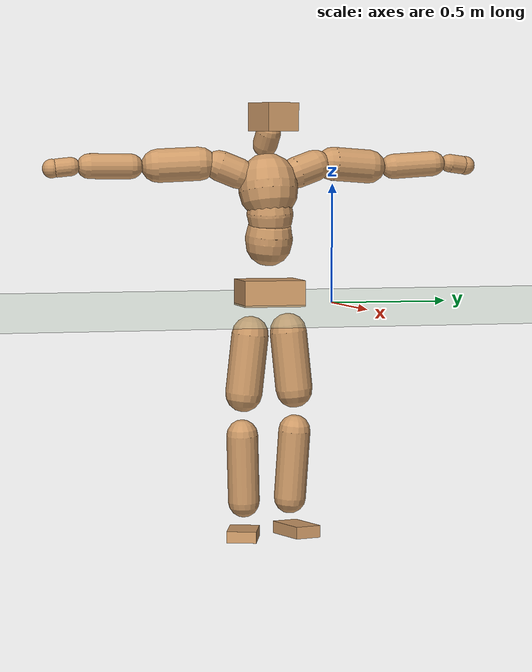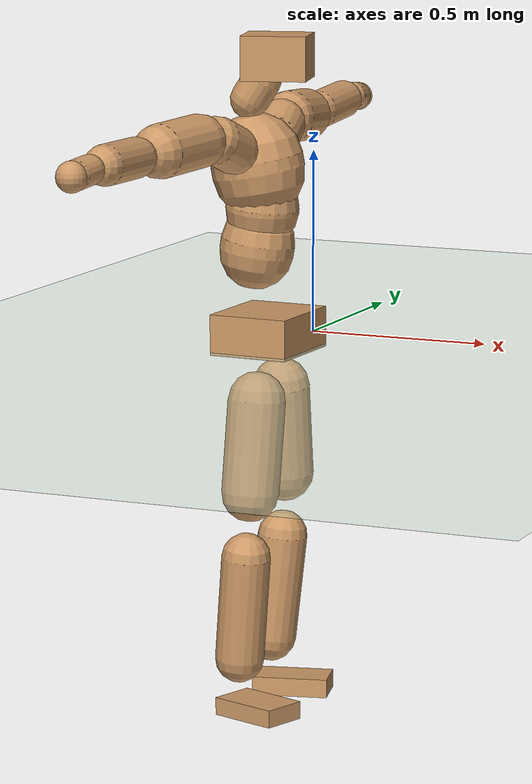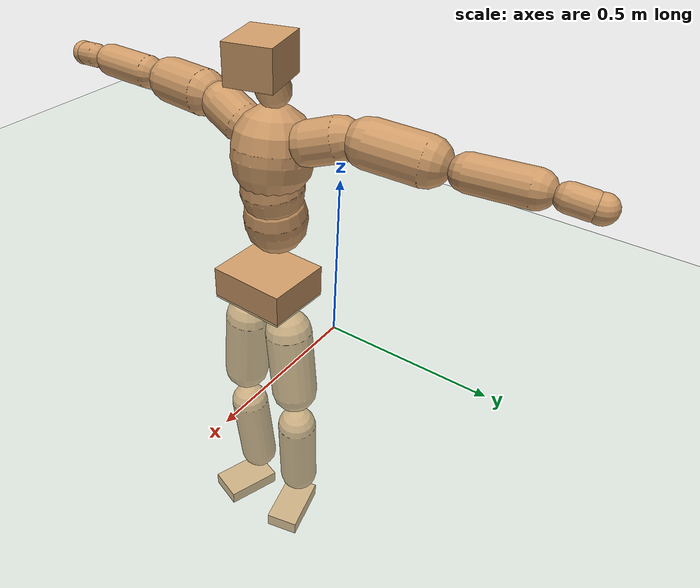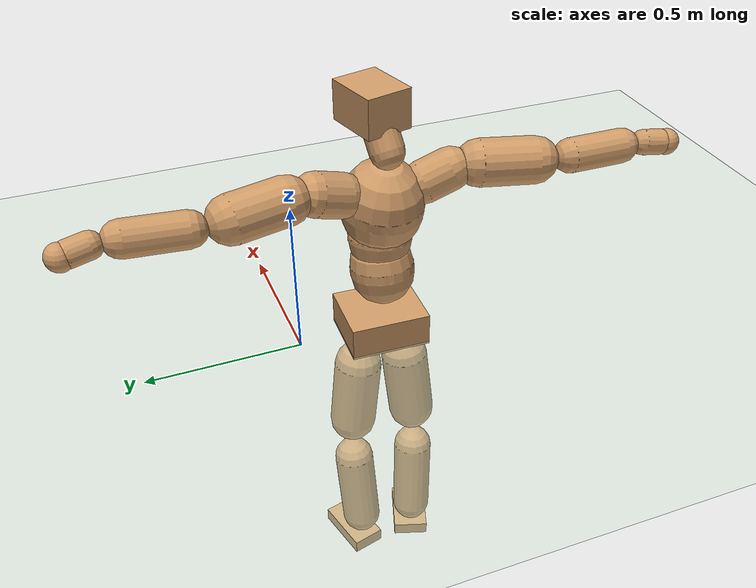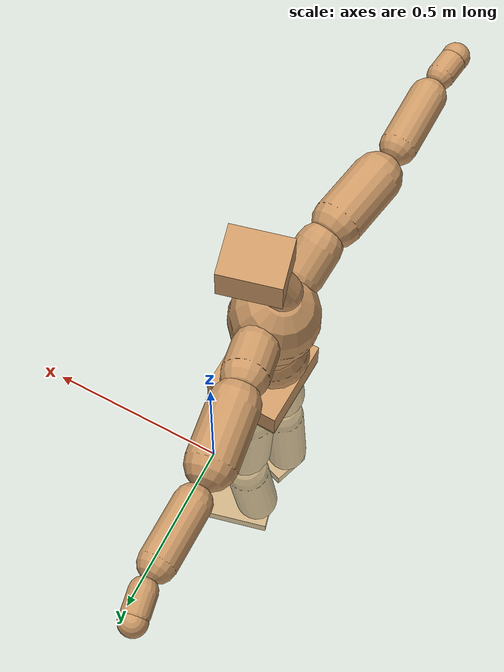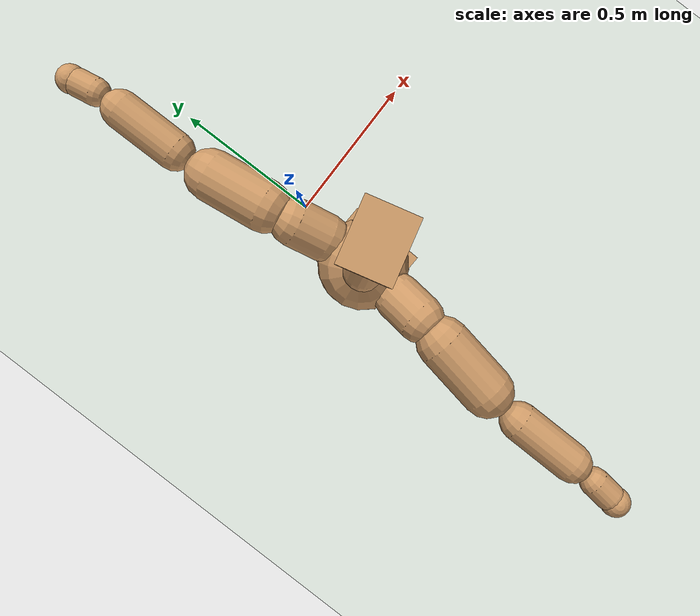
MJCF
<mujoco model="humanoid">
  <compiler coordinate="local" angle="radian"/>
  <default>
    <joint damping="0.0" armature="0.01" stiffness="0.0" limited="true"/>
    <geom conaffinity="1" condim="3" contype="7" margin="0.001" rgba="0.8 0.6 .4 1"/>
  </default>
  <asset>
    <texture type="skybox" builtin="gradient" rgb1=".4 .5 .6" rgb2="0 0 0" width="100" height="100"/>
    <texture builtin="flat" height="1278" mark="cross" markrgb="1 1 1" name="texgeom" random="0.01" rgb1="0.8 0.6 0.4" rgb2="0.8 0.6 0.4" type="cube" width="127"/>
    <texture builtin="checker" height="100" name="texplane" rgb1="0 0 0" rgb2="0.8 0.8 0.8" type="2d" width="100"/>
    <material name="MatPlane" reflectance="0.5" shininess="1" specular="1" texrepeat="60 60" texture="texplane"/>
    <material name="geom" texture="texgeom" texuniform="true"/>
  </asset>
  <worldbody>
    <light cutoff="100" diffuse="1 1 1" dir="-0 0 -1.3" directional="true" exponent="1" pos="0 0 1.3" specular=".1 .1 .1"/>
    <geom conaffinity="1" condim="3" name="floor" pos="0 0 0" rgba="0.8 0.9 0.8 1" size="100 100 .2" type="plane" material="MatPlane"/>
    <body name="Pelvis" pos="-0.003 -0.2694 0.0534">
      <freejoint name="Pelvis"/>
      <geom type="box" contype="1" conaffinity="1" density="500" pos="-0.0132 0.0005 -0.0084" size="0.11 0.128 0.0548" quat="0.9998 0.0000 0.0000 -0.0179" name="Pelvis"/>
      <body name="L_Hip" pos="-0.0123 0.0734 -0.0916">
        <joint name="L_Hip_x" type="hinge" pos="0 0 0" axis="1 0 0" stiffness="800" damping="80" armature="0.02" range="-180.0000 180.0000"/>
        <joint name="L_Hip_y" type="hinge" pos="0 0 0" axis="0 1 0" stiffness="800" damping="80" armature="0.02" range="-180.0000 180.0000"/>
        <joint name="L_Hip_z" type="hinge" pos="0 0 0" axis="0 0 1" stiffness="800" damping="80" armature="0.02" range="-180.0000 180.0000"/>
        <geom type="capsule" contype="1" conaffinity="1" density="500" fromto="0.0002 0.0085 -0.0814 0.0008 0.0339 -0.3255" size="0.0777" name="L_Hip"/>
        <body name="L_Knee" pos="0.0009 0.0423 -0.4068">
          <joint name="L_Knee_x" type="hinge" pos="0 0 0" axis="1 0 0" stiffness="800" damping="80" armature="0.02" range="-180.0000 180.0000"/>
          <joint name="L_Knee_y" type="hinge" pos="0 0 0" axis="0 1 0" stiffness="800" damping="80" armature="0.02" range="-180.0000 180.0000"/>
          <joint name="L_Knee_z" type="hinge" pos="0 0 0" axis="0 0 1" stiffness="800" damping="80" armature="0.02" range="-180.0000 180.0000"/>
          <geom type="capsule" contype="1" conaffinity="1" density="500" fromto="-0.0095 -0.0039 -0.0956 -0.0379 -0.0158 -0.3824" size="0.0676" name="L_Knee"/>
          <body name="L_Ankle" pos="-0.0474 -0.0197 -0.4779">
            <joint name="L_Ankle_x" type="hinge" pos="0 0 0" axis="1 0 0" stiffness="800" damping="80" armature="0.02" range="-180.0000 180.0000"/>
            <joint name="L_Ankle_y" type="hinge" pos="0 0 0" axis="0 1 0" stiffness="800" damping="80" armature="0.02" range="-180.0000 180.0000"/>
            <joint name="L_Ankle_z" type="hinge" pos="0 0 0" axis="0 0 1" stiffness="800" damping="80" armature="0.02" range="-180.0000 180.0000"/>
            <geom type="box" contype="1" conaffinity="1" density="500" pos="0.0678 0.0166 -0.0328" size="0.1028 0.0563 0.0252" quat="0.9928 0.0000 0.0000 0.1200" name="L_Ankle"/>
            <body name="L_Toe" pos="0.1357 0.0333 -0.0657">
              <joint name="L_Toe_x" type="hinge" pos="0 0 0" axis="1 0 0" stiffness="500" damping="50" armature="0.02" range="-180.0000 180.0000"/>
              <joint name="L_Toe_y" type="hinge" pos="0 0 0" axis="0 1 0" stiffness="500" damping="50" armature="0.02" range="-180.0000 180.0000"/>
              <joint name="L_Toe_z" type="hinge" pos="0 0 0" axis="0 0 1" stiffness="500" damping="50" armature="0.02" range="-180.0000 180.0000"/>
              <geom type="box" contype="1" conaffinity="1" density="500" pos="0.0000 0.0000 0.0322" size="0.0011 0.0028 0.0012" quat="0.9921 0.0000 0.0000 0.1252" name="L_Toe"/>
            </body>
          </body>
        </body>
      </body>
      <body name="R_Hip" pos="-0.0068 -0.0759 -0.0996">
        <joint name="R_Hip_x" type="hinge" pos="0 0 0" axis="1 0 0" stiffness="800" damping="80" armature="0.02" range="-180.0000 180.0000"/>
        <joint name="R_Hip_y" type="hinge" pos="0 0 0" axis="0 1 0" stiffness="800" damping="80" armature="0.02" range="-180.0000 180.0000"/>
        <joint name="R_Hip_z" type="hinge" pos="0 0 0" axis="0 0 1" stiffness="800" damping="80" armature="0.02" range="-180.0000 180.0000"/>
        <geom type="capsule" contype="1" conaffinity="1" density="500" fromto="-0.0026 -0.0085 -0.0828 -0.0106 -0.0341 -0.3314" size="0.0773" name="R_Hip"/>
        <body name="R_Knee" pos="-0.0132 -0.0426 -0.4142">
          <joint name="R_Knee_x" type="hinge" pos="0 0 0" axis="1 0 0" stiffness="800" damping="80" armature="0.02" range="-180.0000 180.0000"/>
          <joint name="R_Knee_y" type="hinge" pos="0 0 0" axis="0 1 0" stiffness="800" damping="80" armature="0.02" range="-180.0000 180.0000"/>
          <joint name="R_Knee_z" type="hinge" pos="0 0 0" axis="0 0 1" stiffness="800" damping="80" armature="0.02" range="-180.0000 180.0000"/>
          <geom type="capsule" contype="1" conaffinity="1" density="500" fromto="-0.0086 0.0046 -0.0947 -0.0345 0.0184 -0.3787" size="0.0664" name="R_Knee"/>
          <body name="R_Ankle" pos="-0.0431 0.023 -0.4734">
            <joint name="R_Ankle_x" type="hinge" pos="0 0 0" axis="1 0 0" stiffness="800" damping="80" armature="0.02" range="-180.0000 180.0000"/>
            <joint name="R_Ankle_y" type="hinge" pos="0 0 0" axis="0 1 0" stiffness="800" damping="80" armature="0.02" range="-180.0000 180.0000"/>
            <joint name="R_Ankle_z" type="hinge" pos="0 0 0" axis="0 0 1" stiffness="800" damping="80" armature="0.02" range="-180.0000 180.0000"/>
            <geom type="box" contype="1" conaffinity="1" density="500" pos="0.0710 -0.0240 -0.0338" size="0.0976 0.0621 0.0238" quat="0.9868 0.0000 0.0000 -0.1620" name="R_Ankle"/>
            <body name="R_Toe" pos="0.142 -0.0479 -0.0676">
              <joint name="R_Toe_x" type="hinge" pos="0 0 0" axis="1 0 0" stiffness="500" damping="50" armature="0.02" range="-180.0000 180.0000"/>
              <joint name="R_Toe_y" type="hinge" pos="0 0 0" axis="0 1 0" stiffness="500" damping="50" armature="0.02" range="-180.0000 180.0000"/>
              <joint name="R_Toe_z" type="hinge" pos="0 0 0" axis="0 0 1" stiffness="500" damping="50" armature="0.02" range="-180.0000 180.0000"/>
              <geom type="box" contype="1" conaffinity="1" density="500" pos="0.0000 0.0000 0.0350" size="0.0013 0.0029 0.0012" quat="0.9881 0.0000 0.0000 -0.1537" name="R_Toe"/>
            </body>
          </body>
        </body>
      </body>
      <body name="Torso" pos="-0.0601 0.0053 0.1409">
        <joint name="Torso_x" type="hinge" pos="0 0 0" axis="1 0 0" stiffness="1000" damping="100" armature="0.02" range="-180.0000 180.0000"/>
        <joint name="Torso_y" type="hinge" pos="0 0 0" axis="0 1 0" stiffness="1000" damping="100" armature="0.02" range="-180.0000 180.0000"/>
        <joint name="Torso_z" type="hinge" pos="0 0 0" axis="0 0 1" stiffness="1000" damping="100" armature="0.02" range="-180.0000 180.0000"/>
        <geom type="capsule" contype="1" conaffinity="1" density="500" fromto="0.0142 0.0025 0.0893 0.0095 0.0017 0.0595" size="0.0993" name="Torso"/>
        <body name="Spine" pos="0.0237 0.0042 0.1488">
          <joint name="Spine_x" type="hinge" pos="0 0 0" axis="1 0 0" stiffness="1000" damping="100" armature="0.02" range="-180.0000 180.0000"/>
          <joint name="Spine_y" type="hinge" pos="0 0 0" axis="0 1 0" stiffness="1000" damping="100" armature="0.02" range="-180.0000 180.0000"/>
          <joint name="Spine_z" type="hinge" pos="0 0 0" axis="0 0 1" stiffness="1000" damping="100" armature="0.02" range="-180.0000 180.0000"/>
          <geom type="capsule" contype="1" conaffinity="1" density="500" fromto="0.0040 -0.0018 0.0367 0.0026 -0.0012 0.0245" size="0.0982" name="Spine"/>
          <body name="Chest" pos="0.0066 -0.0029 0.0612">
            <joint name="Chest_x" type="hinge" pos="0 0 0" axis="1 0 0" stiffness="1000" damping="100" armature="0.02" range="-180.0000 180.0000"/>
            <joint name="Chest_y" type="hinge" pos="0 0 0" axis="0 1 0" stiffness="1000" damping="100" armature="0.02" range="-180.0000 180.0000"/>
            <joint name="Chest_z" type="hinge" pos="0 0 0" axis="0 0 1" stiffness="1000" damping="100" armature="0.02" range="-180.0000 180.0000"/>
            <geom type="capsule" contype="1" conaffinity="1" density="500" fromto="-0.0170 -0.0048 0.1001 -0.0113 -0.0032 0.0667" size="0.1247" name="Chest"/>
            <body name="Neck" pos="-0.0447 -0.0145 0.242">
              <joint name="Neck_x" type="hinge" pos="0 0 0" axis="1 0 0" stiffness="500" damping="50" armature="0.02" range="-180.0000 180.0000"/>
              <joint name="Neck_y" type="hinge" pos="0 0 0" axis="0 1 0" stiffness="500" damping="50" armature="0.02" range="-180.0000 180.0000"/>
              <joint name="Neck_z" type="hinge" pos="0 0 0" axis="0 0 1" stiffness="500" damping="50" armature="0.02" range="-180.0000 180.0000"/>
              <geom type="capsule" contype="1" conaffinity="1" density="500" fromto="0.0110 0.0025 0.0175 0.0439 0.0098 0.0701" size="0.052" name="Neck"/>
              <body name="Head" pos="0.0549 0.0123 0.0876">
                <joint name="Head_x" type="hinge" pos="0 0 0" axis="1 0 0" stiffness="500" damping="50" armature="0.02" range="-180.0000 180.0000"/>
                <joint name="Head_y" type="hinge" pos="0 0 0" axis="0 1 0" stiffness="500" damping="50" armature="0.02" range="-180.0000 180.0000"/>
                <joint name="Head_z" type="hinge" pos="0 0 0" axis="0 0 1" stiffness="500" damping="50" armature="0.02" range="-180.0000 180.0000"/>
                <geom type="box" contype="1" conaffinity="1" density="500" pos="0.0285 0.0071 0.0448" size="0.0877 0.0718 0.0593" quat="0.9924 0.0000 0.0000 0.1227" name="Head"/>
              </body>
            </body>
            <body name="L_Thorax" pos="-0.0157 0.0892 0.131">
              <joint name="L_Thorax_x" type="hinge" pos="0 0 0" axis="1 0 0" stiffness="500" damping="50" armature="0.02" range="-180.0000 180.0000"/>
              <joint name="L_Thorax_y" type="hinge" pos="0 0 0" axis="0 1 0" stiffness="500" damping="50" armature="0.02" range="-180.0000 180.0000"/>
              <joint name="L_Thorax_z" type="hinge" pos="0 0 0" axis="0 0 1" stiffness="500" damping="50" armature="0.02" range="-180.0000 180.0000"/>
              <geom type="capsule" contype="1" conaffinity="1" density="500" fromto="-0.0061 0.0297 0.0103 -0.0244 0.1187 0.0412" size="0.0663" name="L_Thorax"/>
              <body name="L_Shoulder" pos="-0.0306 0.1484 0.0515">
                <joint name="L_Shoulder_x" type="hinge" pos="0 0 0" axis="1 0 0" stiffness="500" damping="50" armature="0.02" range="-720.0000 720.0000"/>
                <joint name="L_Shoulder_y" type="hinge" pos="0 0 0" axis="0 1 0" stiffness="500" damping="50" armature="0.02" range="-720.0000 720.0000"/>
                <joint name="L_Shoulder_z" type="hinge" pos="0 0 0" axis="0 0 1" stiffness="500" damping="50" armature="0.02" range="-720.0000 720.0000"/>
                <geom type="capsule" contype="1" conaffinity="1" density="500" fromto="-0.0073 0.0544 -0.0039 -0.0294 0.2177 -0.0157" size="0.0718" name="L_Shoulder"/>
                <body name="L_Elbow" pos="-0.0367 0.2721 -0.0196">
                  <joint name="L_Elbow_x" type="hinge" pos="0 0 0" axis="1 0 0" stiffness="500" damping="50" armature="0.02" range="-720.0000 720.0000"/>
                  <joint name="L_Elbow_y" type="hinge" pos="0 0 0" axis="0 1 0" stiffness="500" damping="50" armature="0.02" range="-720.0000 720.0000"/>
                  <joint name="L_Elbow_z" type="hinge" pos="0 0 0" axis="0 0 1" stiffness="500" damping="50" armature="0.02" range="-720.0000 720.0000"/>
                  <geom type="capsule" contype="1" conaffinity="1" density="500" fromto="-0.0001 0.0590 0.0040 -0.0004 0.2358 0.0158" size="0.0531" name="L_Elbow"/>
                  <body name="L_Wrist" pos="-0.0005 0.2948 0.0198">
                    <joint name="L_Wrist_x" type="hinge" pos="0 0 0" axis="1 0 0" stiffness="300" damping="30" armature="0.02" range="-180.0000 180.0000"/>
                    <joint name="L_Wrist_y" type="hinge" pos="0 0 0" axis="0 1 0" stiffness="300" damping="30" armature="0.02" range="-180.0000 180.0000"/>
                    <joint name="L_Wrist_z" type="hinge" pos="0 0 0" axis="0 0 1" stiffness="300" damping="30" armature="0.02" range="-180.0000 180.0000"/>
                    <geom type="capsule" contype="1" conaffinity="1" density="500" fromto="-0.0034 0.0193 -0.0025 -0.0137 0.0774 -0.0100" size="0.0388" name="L_Wrist"/>
                    <body name="L_Hand" pos="-0.0171 0.0967 -0.0125">
                      <joint name="L_Hand_x" type="hinge" pos="0 0 0" axis="1 0 0" stiffness="300" damping="30" armature="0.02" range="-180.0000 180.0000"/>
                      <joint name="L_Hand_y" type="hinge" pos="0 0 0" axis="0 1 0" stiffness="300" damping="30" armature="0.02" range="-180.0000 180.0000"/>
                      <joint name="L_Hand_z" type="hinge" pos="0 0 0" axis="0 0 1" stiffness="300" damping="30" armature="0.02" range="-180.0000 180.0000"/>
                      <geom type="sphere" contype="1" conaffinity="1" density="500" size="0.0399" pos="0.0000 0.0000 0.0000" name="L_Hand"/>
                    </body>
                  </body>
                </body>
              </body>
            </body>
            <body name="R_Thorax" pos="-0.0248 -0.0989 0.1275">
              <joint name="R_Thorax_x" type="hinge" pos="0 0 0" axis="1 0 0" stiffness="500" damping="50" armature="0.02" range="-180.0000 180.0000"/>
              <joint name="R_Thorax_y" type="hinge" pos="0 0 0" axis="0 1 0" stiffness="500" damping="50" armature="0.02" range="-180.0000 180.0000"/>
              <joint name="R_Thorax_z" type="hinge" pos="0 0 0" axis="0 0 1" stiffness="500" damping="50" armature="0.02" range="-180.0000 180.0000"/>
              <geom type="capsule" contype="1" conaffinity="1" density="500" fromto="-0.0034 -0.0271 0.0110 -0.0136 -0.1086 0.0442" size="0.0651" name="R_Thorax"/>
              <body name="R_Shoulder" pos="-0.017 -0.1357 0.0552">
                <joint name="R_Shoulder_x" type="hinge" pos="0 0 0" axis="1 0 0" stiffness="500" damping="50" armature="0.02" range="-720.0000 720.0000"/>
                <joint name="R_Shoulder_y" type="hinge" pos="0 0 0" axis="0 1 0" stiffness="500" damping="50" armature="0.02" range="-720.0000 720.0000"/>
                <joint name="R_Shoulder_z" type="hinge" pos="0 0 0" axis="0 0 1" stiffness="500" damping="50" armature="0.02" range="-720.0000 720.0000"/>
                <geom type="capsule" contype="1" conaffinity="1" density="500" fromto="-0.0100 -0.0566 -0.0027 -0.0399 -0.2263 -0.0109" size="0.0713" name="R_Shoulder"/>
                <body name="R_Elbow" pos="-0.0498 -0.2828 -0.0137">
                  <joint name="R_Elbow_x" type="hinge" pos="0 0 0" axis="1 0 0" stiffness="500" damping="50" armature="0.02" range="-720.0000 720.0000"/>
                  <joint name="R_Elbow_y" type="hinge" pos="0 0 0" axis="0 1 0" stiffness="500" damping="50" armature="0.02" range="-720.0000 720.0000"/>
                  <joint name="R_Elbow_z" type="hinge" pos="0 0 0" axis="0 0 1" stiffness="500" damping="50" armature="0.02" range="-720.0000 720.0000"/>
                  <geom type="capsule" contype="1" conaffinity="1" density="500" fromto="-0.0007 -0.0580 0.0004 -0.0030 -0.2320 0.0016" size="0.0528" name="R_Elbow"/>
                  <body name="R_Wrist" pos="-0.0037 -0.2899 0.0019">
                    <joint name="R_Wrist_x" type="hinge" pos="0 0 0" axis="1 0 0" stiffness="300" damping="30" armature="0.02" range="-180.0000 180.0000"/>
                    <joint name="R_Wrist_y" type="hinge" pos="0 0 0" axis="0 1 0" stiffness="300" damping="30" armature="0.02" range="-180.0000 180.0000"/>
                    <joint name="R_Wrist_z" type="hinge" pos="0 0 0" axis="0 0 1" stiffness="300" damping="30" armature="0.02" range="-180.0000 180.0000"/>
                    <geom type="capsule" contype="1" conaffinity="1" density="500" fromto="-0.0022 -0.0196 -0.0020 -0.0087 -0.0784 -0.0081" size="0.0391" name="R_Wrist"/>
                    <body name="R_Hand" pos="-0.0109 -0.098 -0.0101">
                      <joint name="R_Hand_x" type="hinge" pos="0 0 0" axis="1 0 0" stiffness="300" damping="30" armature="0.02" range="-180.0000 180.0000"/>
                      <joint name="R_Hand_y" type="hinge" pos="0 0 0" axis="0 1 0" stiffness="300" damping="30" armature="0.02" range="-180.0000 180.0000"/>
                      <joint name="R_Hand_z" type="hinge" pos="0 0 0" axis="0 0 1" stiffness="300" damping="30" armature="0.02" range="-180.0000 180.0000"/>
                      <geom type="sphere" contype="1" conaffinity="1" density="500" size="0.0400" pos="0.0000 0.0000 0.0000" name="R_Hand"/>
                    </body>
                  </body>
                </body>
              </body>
            </body>
          </body>
        </body>
      </body>
    </body>
  </worldbody>
  <actuator>
    <motor name="L_Hip_x" joint="L_Hip_x" gear="500"/>
    <motor name="L_Hip_y" joint="L_Hip_y" gear="500"/>
    <motor name="L_Hip_z" joint="L_Hip_z" gear="500"/>
    <motor name="L_Knee_x" joint="L_Knee_x" gear="500"/>
    <motor name="L_Knee_y" joint="L_Knee_y" gear="500"/>
    <motor name="L_Knee_z" joint="L_Knee_z" gear="500"/>
    <motor name="L_Ankle_x" joint="L_Ankle_x" gear="500"/>
    <motor name="L_Ankle_y" joint="L_Ankle_y" gear="500"/>
    <motor name="L_Ankle_z" joint="L_Ankle_z" gear="500"/>
    <motor name="L_Toe_x" joint="L_Toe_x" gear="500"/>
    <motor name="L_Toe_y" joint="L_Toe_y" gear="500"/>
    <motor name="L_Toe_z" joint="L_Toe_z" gear="500"/>
    <motor name="R_Hip_x" joint="R_Hip_x" gear="500"/>
    <motor name="R_Hip_y" joint="R_Hip_y" gear="500"/>
    <motor name="R_Hip_z" joint="R_Hip_z" gear="500"/>
    <motor name="R_Knee_x" joint="R_Knee_x" gear="500"/>
    <motor name="R_Knee_y" joint="R_Knee_y" gear="500"/>
    <motor name="R_Knee_z" joint="R_Knee_z" gear="500"/>
    <motor name="R_Ankle_x" joint="R_Ankle_x" gear="500"/>
    <motor name="R_Ankle_y" joint="R_Ankle_y" gear="500"/>
    <motor name="R_Ankle_z" joint="R_Ankle_z" gear="500"/>
    <motor name="R_Toe_x" joint="R_Toe_x" gear="500"/>
    <motor name="R_Toe_y" joint="R_Toe_y" gear="500"/>
    <motor name="R_Toe_z" joint="R_Toe_z" gear="500"/>
    <motor name="Torso_x" joint="Torso_x" gear="500"/>
    <motor name="Torso_y" joint="Torso_y" gear="500"/>
    <motor name="Torso_z" joint="Torso_z" gear="500"/>
    <motor name="Spine_x" joint="Spine_x" gear="500"/>
    <motor name="Spine_y" joint="Spine_y" gear="500"/>
    <motor name="Spine_z" joint="Spine_z" gear="500"/>
    <motor name="Chest_x" joint="Chest_x" gear="500"/>
    <motor name="Chest_y" joint="Chest_y" gear="500"/>
    <motor name="Chest_z" joint="Chest_z" gear="500"/>
    <motor name="Neck_x" joint="Neck_x" gear="500"/>
    <motor name="Neck_y" joint="Neck_y" gear="500"/>
    <motor name="Neck_z" joint="Neck_z" gear="500"/>
    <motor name="Head_x" joint="Head_x" gear="500"/>
    <motor name="Head_y" joint="Head_y" gear="500"/>
    <motor name="Head_z" joint="Head_z" gear="500"/>
    <motor name="L_Thorax_x" joint="L_Thorax_x" gear="500"/>
    <motor name="L_Thorax_y" joint="L_Thorax_y" gear="500"/>
    <motor name="L_Thorax_z" joint="L_Thorax_z" gear="500"/>
    <motor name="L_Shoulder_x" joint="L_Shoulder_x" gear="500"/>
    <motor name="L_Shoulder_y" joint="L_Shoulder_y" gear="500"/>
    <motor name="L_Shoulder_z" joint="L_Shoulder_z" gear="500"/>
    <motor name="L_Elbow_x" joint="L_Elbow_x" gear="500"/>
    <motor name="L_Elbow_y" joint="L_Elbow_y" gear="500"/>
    <motor name="L_Elbow_z" joint="L_Elbow_z" gear="500"/>
    <motor name="L_Wrist_x" joint="L_Wrist_x" gear="500"/>
    <motor name="L_Wrist_y" joint="L_Wrist_y" gear="500"/>
    <motor name="L_Wrist_z" joint="L_Wrist_z" gear="500"/>
    <motor name="L_Hand_x" joint="L_Hand_x" gear="500"/>
    <motor name="L_Hand_y" joint="L_Hand_y" gear="500"/>
    <motor name="L_Hand_z" joint="L_Hand_z" gear="500"/>
    <motor name="R_Thorax_x" joint="R_Thorax_x" gear="500"/>
    <motor name="R_Thorax_y" joint="R_Thorax_y" gear="500"/>
    <motor name="R_Thorax_z" joint="R_Thorax_z" gear="500"/>
    <motor name="R_Shoulder_x" joint="R_Shoulder_x" gear="500"/>
    <motor name="R_Shoulder_y" joint="R_Shoulder_y" gear="500"/>
    <motor name="R_Shoulder_z" joint="R_Shoulder_z" gear="500"/>
    <motor name="R_Elbow_x" joint="R_Elbow_x" gear="500"/>
    <motor name="R_Elbow_y" joint="R_Elbow_y" gear="500"/>
    <motor name="R_Elbow_z" joint="R_Elbow_z" gear="500"/>
    <motor name="R_Wrist_x" joint="R_Wrist_x" gear="500"/>
    <motor name="R_Wrist_y" joint="R_Wrist_y" gear="500"/>
    <motor name="R_Wrist_z" joint="R_Wrist_z" gear="500"/>
    <motor name="R_Hand_x" joint="R_Hand_x" gear="500"/>
    <motor name="R_Hand_y" joint="R_Hand_y" gear="500"/>
    <motor name="R_Hand_z" joint="R_Hand_z" gear="500"/>
  </actuator>
  <contact>
    <exclude body1="Torso" body2="Chest"/>
    <exclude body1="Head" body2="Chest"/>
    <exclude body1="R_Knee" body2="R_Toe"/>
    <exclude body1="R_Knee" body2="L_Ankle"/>
    <exclude body1="R_Knee" body2="L_Toe"/>
    <exclude body1="L_Knee" body2="L_Toe"/>
    <exclude body1="L_Knee" body2="R_Ankle"/>
    <exclude body1="L_Knee" body2="R_Toe"/>
    <exclude body1="L_Shoulder" body2="Chest"/>
    <exclude body1="R_Shoulder" body2="Chest"/>
  </contact>
  <sensor/>
  <size njmax="700" nconmax="700"/>
</mujoco>
